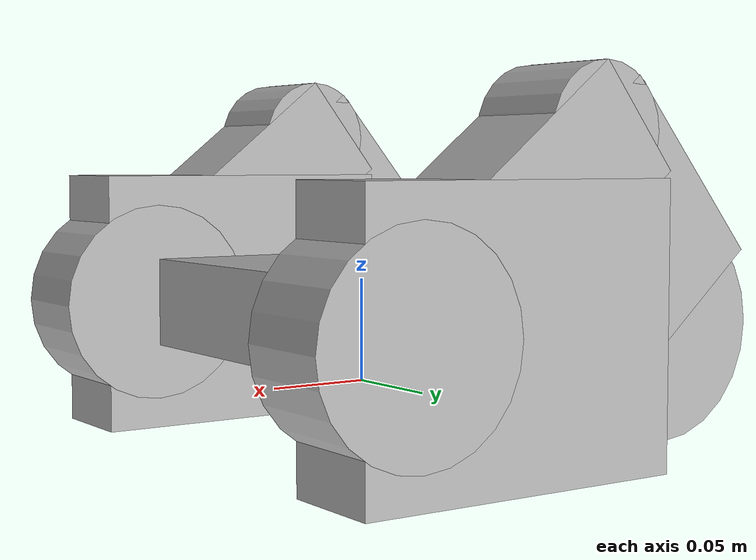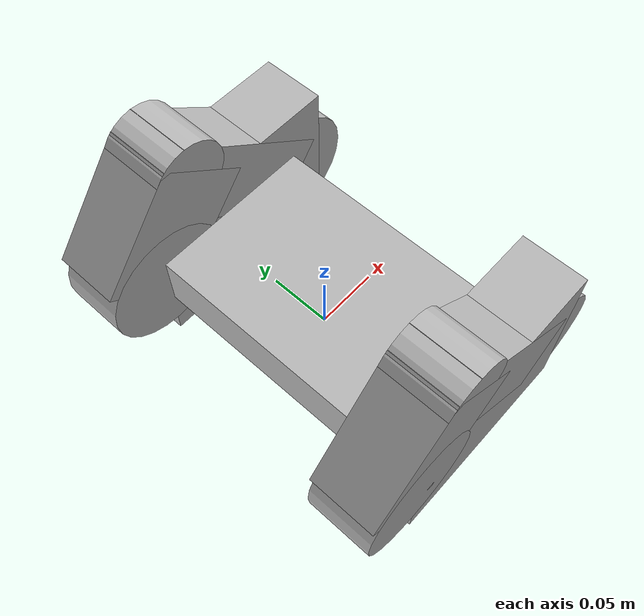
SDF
<?xml version='1.0'?>
<sdf version='1.3'>
  <model name="tank_tread2">

    <link name='chassis'>
      <pose>0 0 0.035 0 0 0</pose>
      <collision name='collision'>
        <geometry>
          <box>
            <size>0.13 0.18 0.0445</size>
          </box>
        </geometry>
      </collision>

      <visual name='visual'>
        <geometry>
          <box>
            <size>0.13 0.18 0.0445</size>
          </box>
        </geometry>
      </visual>
    </link>

  <link name="left_topwheel">
  	<pose>-0.03 0.115 0.12 0 1.5707 1.5707</pose>
    <collision name="collision">
      <geometry>
        <cylinder>
          <radius>.03</radius>
          <length>.05</length>
        </cylinder>
      </geometry>
    </collision>
    <visual name="visual">
      <geometry>
        <cylinder>
          <radius>.03</radius>
          <length>.05</length>
        </cylinder>
      </geometry>
    </visual>
  </link>

  <link name="right_topwheel">
  	<pose>-0.03 -0.115 0.12 0 1.5707 1.5707</pose>
    <collision name="collision">
      <geometry>
        <cylinder>
          <radius>.03</radius>
          <length>.05</length>
        </cylinder>
      </geometry>
    </collision>
    <visual name="visual">
      <geometry>
        <cylinder>
          <radius>.03</radius>
          <length>.05</length>
        </cylinder>
      </geometry>
    </visual>
  </link>

    <link name='left_track'>
      <pose>0.0127 0.115 0.035 0 0 1.5707</pose>
      <collision name='collision'>
        <geometry>
          <box>
            <size>0.05 0.16 0.13</size>
          </box>
        </geometry>
      </collision>

      <visual name='visual'>
        <geometry>
          <box>
            <size>0.05 0.16 0.13</size>
          </box>
        </geometry>
      </visual>
    </link>

    <link name='right_track'>
      <pose>0.0127 -0.115 0.035 0 0 1.5707</pose>
      <collision name='collision'>
        <geometry>
          <box>
            <size>0.05 0.16 0.13</size>
          </box>
        </geometry>
      </collision>

      <visual name='visual'>
        <geometry>
          <box>
            <size>0.05 0.16 0.13</size>
          </box>
        </geometry>
      </visual>
    </link>

    <link name='left_topbacktrack'>
      <pose>-0.05 0.115 0.08 0.70 0 1.5707</pose>
      <collision name='collision'>
        <geometry>
          <box>
            <size>0.05 0.08 0.1</size>
          </box>
        </geometry>
      </collision>

      <visual name='visual'>
        <geometry>
          <box>
            <size>0.05 0.08 0.1</size>
          </box>
        </geometry>
      </visual>
    </link>

    <link name='right_topbacktrack'>
      <pose>-0.05 -0.115 0.08 0.70 0 1.5707</pose>
      <collision name='collision'>
        <geometry>
          <box>
            <size>0.05 0.08 0.1</size>
          </box>
        </geometry>
      </collision>

      <visual name='visual'>
        <geometry>
          <box>
            <size>0.05 0.08 0.1</size>
          </box>
        </geometry>
      </visual>
    </link>

    <link name='left_topfronttrack'>
      <pose>0.01 0.115 0.08 -0.90 0 1.5707</pose>
      <collision name='collision'>
        <geometry>
          <box>
            <size>0.05 0.06 0.15</size>
          </box>
        </geometry>
      </collision>

      <visual name='visual'>
        <geometry>
          <box>
            <size>0.05 0.06 0.15</size>
          </box>
        </geometry>
      </visual>
    </link>

    <link name='right_topfronttrack'>
      <pose>0.01 -0.115 0.08 -0.90 0 1.5707</pose>
      <collision name='collision'>
        <geometry>
          <box>
            <size>0.05 0.06 0.15</size>
          </box>
        </geometry>
      </collision>

      <visual name='visual'>
        <geometry>
          <box>
            <size>0.05 0.06 0.15</size>
          </box>
        </geometry>
      </visual>
    </link>

  <link name="left_backwheel">
  	<pose>-0.065 0.115 0.035 0 1.5707 1.5707</pose>
    <collision name="collision">
      <geometry>
        <cylinder>
          <radius>.05</radius>
          <length>.05</length>
        </cylinder>
      </geometry>
    </collision>
    <visual name="visual">
      <geometry>
        <cylinder>
          <radius>.05</radius>
          <length>.05</length>
        </cylinder>
      </geometry>
    </visual>
  </link>

  <link name="right_backwheel">
  	<pose>-0.065 -0.115 0.035 0 1.5707 1.5707</pose>
    <collision name="collision">
      <geometry>
        <cylinder>
          <radius>.05</radius>
          <length>.05</length>
        </cylinder>
      </geometry>
    </collision>
    <visual name="visual">
      <geometry>
        <cylinder>
          <radius>.05</radius>
          <length>.05</length>
        </cylinder>
      </geometry>
    </visual>
  </link>

  <link name="left_frontwheel">
  	<pose>0.065 0.115 0.035 0 1.5707 1.5707</pose>
    <collision name="collision">
      <geometry>
        <cylinder>
          <radius>.05</radius>
          <length>.05</length>
        </cylinder>
      </geometry>
    </collision>
    <visual name="visual">
      <geometry>
        <cylinder>
          <radius>.05</radius>
          <length>.05</length>
        </cylinder>
      </geometry>
    </visual>
  </link>

  <link name="right_frontwheel">
  	<pose>0.065 -0.115 0.035 0 1.5707 1.5707</pose>
    <collision name="collision">
      <geometry>
        <cylinder>
          <radius>.05</radius>
          <length>.05</length>
        </cylinder>
      </geometry>
    </collision>
    <visual name="visual">
      <geometry>
        <cylinder>
          <radius>.05</radius>
          <length>.05</length>
        </cylinder>
      </geometry>
    </visual>
  </link>

  <joint type="revolute" name="left_track_hinge">
    <pose>0 0 0 0 0 0</pose>
    <child>left_track</child>
    <parent>chassis</parent>
    <axis>
      <xyz>0 1 0</xyz>
    </axis>
  </joint>
  <joint type="revolute" name="right_track_hinge">
    <pose>0 0 0 0 0 0</pose>
    <child>right_track</child>
    <parent>chassis</parent>
    <axis>
      <xyz>0 1 0</xyz>
    </axis>
  </joint>

  <joint type="revolute" name="left_top_hinge">
    <pose>0 0 0 0 0 0</pose>
    <child>left_topwheel</child>
    <parent>chassis</parent>
    <axis>
      <xyz>0 1 0</xyz>
    </axis>
  </joint>
  <joint type="revolute" name="right_top_hinge">
    <pose>0 0 0 0 0 0</pose>
    <child>right_topwheel</child>
    <parent>chassis</parent>
    <axis>
      <xyz>0 1 0</xyz>
    </axis>
  </joint>

  <joint type="revolute" name="left_topback_hinge">
    <pose>0 0 0 0 0 0</pose>
    <child>left_toptrack</child>
    <parent>left_backwheel</parent>
    <axis>
      <xyz>0 1 0</xyz>
    </axis>
  </joint>
  <joint type="revolute" name="right_topback_hinge">
    <pose>0 0 0 0 0 0</pose>
    <child>right_toptrack</child>
    <parent>right_backwheel</parent>
    <axis>
      <xyz>0 1 0</xyz>
    </axis>
  </joint>

  <joint type="revolute" name="left_topfront_hinge">
    <pose>0 0 0 0 0 0</pose>
    <child>left_toptrack</child>
    <parent>left_frontwheel</parent>
    <axis>
      <xyz>0 1 0</xyz>
    </axis>
  </joint>
  <joint type="revolute" name="right_topfront_hinge">
    <pose>0 0 0 0 0 0</pose>
    <child>right_toptrack</child>
    <parent>right_frontwheel</parent>
    <axis>
      <xyz>0 1 0</xyz>
    </axis>
  </joint>

  <joint type="revolute" name="left_backwheel_hinge">
    <pose>0 0 0 0 0 0</pose>
    <child>left_backwheel</child>
    <parent>chassis</parent>
    <axis>
      <xyz>0 1 0</xyz>
    </axis>
  </joint>

  <joint type="revolute" name="left_frontwheel_hinge">
    <pose>0 0 0 0 0 0</pose>
    <child>left_frontwheel</child>
    <parent>chassis</parent>
    <axis>
      <xyz>0 1 0</xyz>
    </axis>
  </joint>

  <joint type="revolute" name="right_backwheel_hinge">
    <pose>0 0 0 0 0 0</pose>
    <child>right_backwheel</child>
    <parent>chassis</parent>
    <axis>
      <xyz>0 1 0</xyz>
    </axis>
  </joint>

  <joint type="revolute" name="right_frontwheel_hinge">
    <pose>0 0 0 0 0 0</pose>
    <child>right_frontwheel</child>
    <parent>chassis</parent>
    <axis>
      <xyz>0 1 0</xyz>
    </axis>
  </joint>

  </model>
</sdf>
